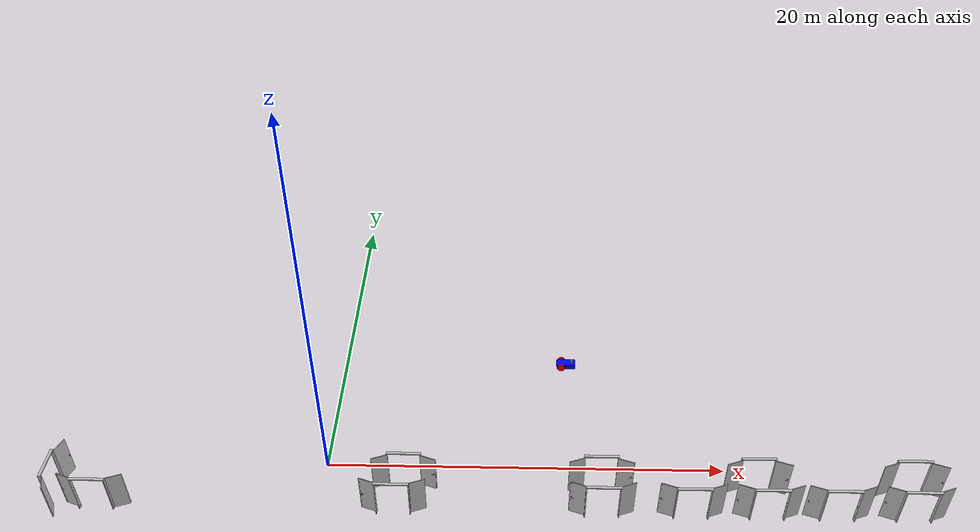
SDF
<sdf version="1.6">
 <world name="default">
  <gravity>0 0 -9.8</gravity>
  <physics default="0" name="default_physics" type="ode">
   <max_step_size>0.001</max_step_size>
   <real_time_factor>1</real_time_factor>
   <real_time_update_rate>1000</real_time_update_rate>
  </physics>
  <plugin filename="gz-sim-physics-system" name="gz::sim::systems::Physics"/>
  <plugin filename="gz-sim-user-commands-system" name="gz::sim::systems::UserCommands"/>
  <plugin filename="gz-sim-scene-broadcaster-system" name="gz::sim::systems::SceneBroadcaster"/>
  <plugin filename="gz-sim-imu-system" name="gz::sim::systems::Imu"/>
  <plugin filename="gz-sim-sensors-system" name="gz::sim::systems::Sensors">
   <render_engine>ogre2</render_engine>
  </plugin>
  <model name="vehicle_blue" canonical_link="chassis">
   <pose relative_to="world">12 7 0.5 0 0 0</pose>
   <frame name="lidar_frame" attached_to="chassis"><pose>0.4 0 0.25 0 0 0</pose></frame>
   <link name="chassis">
    <pose relative_to="__model__">0.25 0 0.2 0 0 0</pose>
    <inertial>
     <mass>0.5</mass>
     <inertia>
      <ixx>0.010417</ixx>
      <ixy>0</ixy>
      <ixz>0</ixz>
      <iyy>0.041667</iyy>
      <iyz>0</iyz>
      <izz>0.052083</izz>
     </inertia>
    </inertial>
    <visual name="visual">
     <geometry><box><size>1.0 0.5 0.25</size></box></geometry>
     <material>
      <ambient>0.0 0.0 1.0 1</ambient>
      <diffuse>0.0 0.0 1.0 1</diffuse>
      <specular>0.0 0.0 1.0 1</specular>
     </material>
    </visual>
    <collision name="collision"><geometry><box><size>1.0 0.5 0.25</size></box></geometry></collision>
    <sensor name="imu_sensor" type="imu">
     <always_on>1</always_on>
     <update_rate>1</update_rate>
     <visualize>true</visualize>
     <topic>imu</topic>
    </sensor>
    <sensor name="gpu_lidar" type="gpu_lidar">
     <pose relative_to="lidar_frame">0 0 0 0 0 0</pose>
     <topic>lidar</topic>
     <update_rate>10</update_rate>
     <lidar>
      <scan>
       <horizontal>
        <samples>640</samples>
        <resolution>1</resolution>
        <min_angle>-1.396263</min_angle>
        <max_angle>1.396263</max_angle>
       </horizontal>
       <vertical>
        <samples>1</samples>
        <resolution>1</resolution>
        <min_angle>0.0</min_angle>
        <max_angle>0.0</max_angle>
       </vertical>
      </scan>
      <range><min>0.08</min><max>10.0</max><resolution>0.01</resolution></range>
     </lidar>
    </sensor>
    <sensor name="camera1" type="camera">
     <pose relative_to="lidar_frame">0 0 0 0 0 0</pose>
     <always_on>1</always_on>
     <update_rate>30.0</update_rate>
     <topic>camera</topic>
     <camera name="camera_front">
      <horizontal_fov>1.4137</horizontal_fov>
      <lens>
       <intrinsics><fx>1108.952913</fx><fy>1110.658360</fy><cx>729.53</cx><cy>544.98</cy><s>1</s></intrinsics>
      </lens>
      <distortion><k1>0.0</k1><k2>0.0</k2><k3>0.0</k3><p1>0.0</p1><p2>0.0</p2><center>0.5 0.5</center></distortion>
      <image><width>1440</width><height>1080</height><format>R8G8B8</format></image>
      <noise><type>gaussian</type><mean>0</mean><stddev>0.007</stddev></noise>
     </camera>
    </sensor>
   </link>
   <frame name="box_frame" attached_to="chassis"><pose>0.3 0 0.2 0 0 0</pose></frame>
   <link name="cube">
    <pose relative_to="box_frame"/>
    <inertial>
     <mass>0.1</mass>
     <inertia><ixx>0.000166667</ixx><iyy>0.000166667</iyy><izz>0.000166667</izz></inertia>
    </inertial>
    <collision name="collision"><geometry><box><size>0.1 0.1 0.1</size></box></geometry></collision>
    <visual name="visual">
     <geometry><box><size>0.15 0.15 0.15</size></box></geometry>
     <material>
      <ambient>0.5 0.5 0.5 1</ambient>
      <diffuse>0.5 0.5 0.5 1</diffuse>
      <specular>0.5 0.5 0.5 1</specular>
     </material>
    </visual>
   </link>
   <link name="left_wheel">
    <pose relative_to="chassis">-0.25 0.3 0 -1.5707 0 0</pose>
    <inertial>
     <mass>1</mass>
     <inertia>
      <ixx>0.03645825</ixx>
      <ixy>0</ixy>
      <ixz>0</ixz>
      <iyy>0.03645825</iyy>
      <iyz>0</iyz>
      <izz>0.03125</izz>
     </inertia>
    </inertial>
    <visual name="visual">
     <geometry><cylinder><radius>0.2</radius><length>0.1</length></cylinder></geometry>
     <material>
      <ambient>1.0 0.0 0.0 1</ambient>
      <diffuse>1.0 0.0 0.0 1</diffuse>
      <specular>1.0 0.0 0.0 1</specular>
     </material>
    </visual>
    <collision name="collision">
     <geometry><cylinder><radius>0.2</radius><length>0.1</length></cylinder></geometry>
    </collision>
   </link>
   <link name="right_wheel">
    <pose relative_to="chassis">-0.25 -0.3 0 -1.5707 0 0</pose>
    <inertial>
     <mass>0.5</mass>
     <inertia>
      <ixx>0.03645825</ixx>
      <ixy>0</ixy>
      <ixz>0</ixz>
      <iyy>0.03645825</iyy>
      <iyz>0</iyz>
      <izz>0.03125</izz>
     </inertia>
    </inertial>
    <visual name="visual">
     <geometry><cylinder><radius>0.2</radius><length>0.1</length></cylinder></geometry>
     <material>
      <ambient>1.0 0.0 0.0 1</ambient>
      <diffuse>1.0 0.0 0.0 1</diffuse>
      <specular>1.0 0.0 0.0 1</specular>
     </material>
    </visual>
    <collision name="collision">
     <geometry><cylinder><radius>0.2</radius><length>0.1</length></cylinder></geometry>
    </collision>
   </link>
   <frame name="caster_frame" attached_to="chassis"><pose>0.4 0 -0.1 0 0 0</pose></frame>
   <link name="caster">
    <pose relative_to="caster_frame"/>
    <inertial>
     <mass>0.5</mass>
     <inertia><ixx>0.0125</ixx><ixy>0</ixy><ixz>0</ixz><iyy>0.0125</iyy><iyz>0</iyz><izz>0.0125</izz></inertia>
    </inertial>
    <visual name="visual">
     <geometry><sphere><radius>0.1</radius></sphere></geometry>
     <material>
      <ambient>0.0 1 0.0 1</ambient>
      <diffuse>0.0 1 0.0 1</diffuse>
      <specular>0.0 1 0.0 1</specular>
     </material>
    </visual>
    <collision name="collision"><geometry><sphere><radius>0.1</radius></sphere></geometry></collision>
   </link>
   <joint name="cube_joint" type="fixed"><parent>chassis</parent><child>cube</child></joint>
   <joint name="left_wheel_joint" type="revolute">
    <pose relative_to="left_wheel"/>
    <parent>chassis</parent>
    <child>left_wheel</child>
    <axis>
     <xyz expressed_in="__model__">0 1 0</xyz>
     <limit><lower>-1.79769e+308</lower><upper>1.79769e+308</upper></limit>
    </axis>
   </joint>
   <joint name="right_wheel_joint" type="revolute">
    <pose relative_to="right_wheel"/>
    <parent>chassis</parent>
    <child>right_wheel</child>
    <axis>
     <xyz expressed_in="__model__">0 1 0</xyz>
     <limit><lower>-1.79769e+308</lower><upper>1.79769e+308</upper></limit>
    </axis>
   </joint>
   <joint name="caster_wheel" type="ball"><parent>chassis</parent><child>caster</child></joint>
   <plugin filename="gz-sim-diff-drive-system" name="gz::sim::systems::DiffDrive">
    <left_joint>left_wheel_joint</left_joint>
    <right_joint>right_wheel_joint</right_joint>
    <wheel_separation>0.6</wheel_separation>
    <wheel_radius>0.2</wheel_radius>
    <odom_publish_frequency>1</odom_publish_frequency>
    <topic>cmd_vel</topic>
   </plugin>
  </model>
  <plugin filename="gz-sim-triggered-publisher-system" name="gz::sim::systems::TriggeredPublisher">
   <input type="gz.msgs.Int32" topic="/keyboard/keypress"><match field="data">16777234</match></input>
   <output type="gz.msgs.Twist" topic="/cmd_vel">linear: {x: 0.0}, angular: {z: 0.5}</output>
  </plugin>
  <plugin filename="gz-sim-triggered-publisher-system" name="gz::sim::systems::TriggeredPublisher">
   <input type="gz.msgs.Int32" topic="/keyboard/keypress"><match field="data">16777235</match></input>
   <output type="gz.msgs.Twist" topic="/cmd_vel">linear: {x: 0.5}, angular: {z: 0.0}</output>
  </plugin>
  <plugin filename="gz-sim-triggered-publisher-system" name="gz::sim::systems::TriggeredPublisher">
   <input type="gz.msgs.Int32" topic="/keyboard/keypress"><match field="data">16777236</match></input>
   <output type="gz.msgs.Twist" topic="/cmd_vel">linear: {x: 0.0}, angular: {z: -0.5}</output>
  </plugin>
  <plugin filename="gz-sim-triggered-publisher-system" name="gz::sim::systems::TriggeredPublisher">
   <input type="gz.msgs.Int32" topic="/keyboard/keypress"><match field="data">16777237</match></input>
   <output type="gz.msgs.Twist" topic="/cmd_vel">linear: {x: -0.5}, angular: {z: 0.0}</output>
  </plugin>
  <plugin filename="gz-sim-triggered-publisher-system" name="gz::sim::systems::TriggeredPublisher">
   <input type="gz.msgs.Int32" topic="/keyboard/keypress"><match field="data">16777249</match></input>
   <output type="gz.msgs.Twist" topic="/cmd_vel">linear: {x: 0}, angular: {z: 0}</output>
  </plugin>
  <plugin filename="gz-sim-triggered-publisher-system" name="gz::sim::systems::TriggeredPublisher">
   <input type="gz.msgs.Boolean" topic="/storage_90/touched"><match>data: true</match></input>
   <output type="gz.msgs.Twist" topic="/cmd_vel">linear: {x: 0.0}, angular: {z: 0.0}</output>
  </plugin>
  <plugin filename="gz-sim-triggered-publisher-system" name="gz::sim::systems::TriggeredPublisher">
   <input type="gz.msgs.Boolean" topic="/office_chair/touched"><match>data: true</match></input>
   <output type="gz.msgs.Twist" topic="/cmd_vel">linear: {x: 0.0}, angular: {z: 0.0}</output>
  </plugin>
  <model name="door_160_fully_open_12">
   <include><uri>model://models/door_160_fully_open</uri></include>
   <pose>4.058 -1.04 0 0 0 3.14159</pose>
  </model>
  <model name="door_160_fully_open_01">
   <include><uri>model://models/door_160_fully_open</uri></include>
   <pose>13.673 -1.04 0 0 0 3.14159</pose>
  </model>
  <model name="door_160_fully_open_02">
   <include><uri>model://models/door_160_fully_open</uri></include>
   <pose>21.273 -1.04 0 0 0 3.14159</pose>
  </model>
  <model name="door_160_fully_open_03">
   <include><uri>model://models/door_160_fully_open</uri></include>
   <pose>28.770 -1.04 0 0 0 3.14159</pose>
  </model>
  <model name="door_160_fully_open_04">
   <include><uri>model://models/door_160_fully_open</uri></include>
   <pose>28.620 -2.975 0 0 0 0</pose>
  </model>
  <model name="door_160_fully_open_05">
   <include><uri>model://models/door_160_fully_open</uri></include>
   <pose>24.96 -2.975 0 0 0 0</pose>
  </model>
  <model name="door_160_fully_open_06">
   <include><uri>model://models/door_160_fully_open</uri></include>
   <pose>21.601 -2.975 0 0 0 0</pose>
  </model>
  <model name="door_160_fully_open_07">
   <include><uri>model://models/door_160_fully_open</uri></include>
   <pose>17.955 -2.975 0 0 0 0</pose>
  </model>
  <model name="door_160_fully_open_08">
   <include><uri>model://models/door_160_fully_open</uri></include>
   <pose>13.673 -2.975 0 0 0 0</pose>
  </model>
  <model name="door_160_fully_open_09">
   <include><uri>model://models/door_160_fully_open</uri></include>
   <pose>3.63 -2.975 0 0 0 0</pose>
  </model>
  <model name="door_160_fully_open_10">
   <include><uri>model://models/door_160_fully_open</uri></include>
   <pose>-10.807 -2.975 0 0 0 0</pose>
  </model>
  <model name="door_160_fully_open_11">
   <include><uri>model://models/door_160_fully_open</uri></include>
   <pose>-13.095 -2.0065 0 0 0 -1.5708</pose>
  </model>
  <light name="ceiling_light_01" type="point">
   <pose>11 7 3.21824 0 0 0</pose>
   <diffuse>1 1 1 1</diffuse>
   <specular>1 1 1 1</specular>
   <intensity>0.2</intensity>
   <attenuation>
    <range>10</range>
    <constant>0.3</constant>
    <linear>0.01</linear>
    <quadratic>0.001</quadratic>
   </attenuation>
   <direction>0.1 0.1 -1</direction>
  </light>
  <light name="ceiling_light_02" type="point">
   <pose>14 7 3.21824 0 0 0</pose>
   <diffuse>1 1 1 1</diffuse>
   <specular>1 1 1 1</specular>
   <intensity>0.2</intensity>
   <attenuation>
    <range>10</range>
    <constant>0.3</constant>
    <linear>0.01</linear>
    <quadratic>0.001</quadratic>
   </attenuation>
   <direction>0.1 0.1 -1</direction>
  </light>
  <light name="ceiling_light_03" type="point">
   <pose>11 2 3.21824 0 0 0</pose>
   <diffuse>1 1 1 1</diffuse>
   <specular>1 1 1 1</specular>
   <intensity>0.2</intensity>
   <attenuation>
    <range>10</range>
    <constant>0.3</constant>
    <linear>0.01</linear>
    <quadratic>0.001</quadratic>
   </attenuation>
   <direction>0.1 0.1 -1</direction>
  </light>
  <light name="ceiling_light_04" type="point">
   <pose>14 2 3.21824 0 0 0</pose>
   <diffuse>1 1 1 1</diffuse>
   <specular>1 1 1 1</specular>
   <intensity>0.2</intensity>
   <attenuation>
    <range>10</range>
    <constant>0.3</constant>
    <linear>0.01</linear>
    <quadratic>0.001</quadratic>
   </attenuation>
   <direction>0.1 0.1 -1</direction>
  </light>
  <light name="ceiling_light_05" type="point">
   <pose>12.5 -6.2 3.21824 0 0 0</pose>
   <diffuse>1 1 1 1</diffuse>
   <specular>1 1 1 1</specular>
   <intensity>0.6</intensity>
   <attenuation>
    <range>6</range>
    <constant>0.3</constant>
    <linear>0.01</linear>
    <quadratic>0.001</quadratic>
   </attenuation>
   <direction>0.1 0.1 -1</direction>
  </light>
  <light name="ceiling_light_07" type="point">
   <pose>3.2 -4.3 3.21824 0 0 0</pose>
   <diffuse>1 1 1 1</diffuse>
   <specular>1 1 1 1</specular>
   <intensity>0.2</intensity>
   <attenuation>
    <range>9</range>
    <constant>0.3</constant>
    <linear>0.01</linear>
    <quadratic>0.001</quadratic>
   </attenuation>
   <direction>0.1 0.1 -1</direction>
  </light>
  <light name="ceiling_light_08" type="point">
   <pose>3.2 -8.3 3.21824 0 0 0</pose>
   <diffuse>1 1 1 1</diffuse>
   <specular>1 1 1 1</specular>
   <intensity>0.2</intensity>
   <attenuation>
    <range>9</range>
    <constant>0.3</constant>
    <linear>0.01</linear>
    <quadratic>0.001</quadratic>
   </attenuation>
   <direction>0.1 0.1 -1</direction>
  </light>
  <light name="ceiling_light_09" type="point">
   <pose>7.2 -4.3 3.21824 0 0 0</pose>
   <diffuse>1 1 1 1</diffuse>
   <specular>1 1 1 1</specular>
   <intensity>0.2</intensity>
   <attenuation>
    <range>9</range>
    <constant>0.3</constant>
    <linear>0.01</linear>
    <quadratic>0.001</quadratic>
   </attenuation>
   <direction>0.1 0.1 -1</direction>
  </light>
  <light name="ceiling_light_10" type="point">
   <pose>7.2 -8.3 3.21824 0 0 0</pose>
   <diffuse>1 1 1 1</diffuse>
   <specular>1 1 1 1</specular>
   <intensity>0.2</intensity>
   <attenuation>
    <range>9</range>
    <constant>0.3</constant>
    <linear>0.01</linear>
    <quadratic>0.001</quadratic>
   </attenuation>
   <direction>0.1 0.1 -1</direction>
  </light>
  <light name="ceiling_light_11" type="point">
   <pose>-1.5 -6.3 3.21824 0 0 0</pose>
   <diffuse>1 1 1 1</diffuse>
   <specular>1 1 1 1</specular>
   <intensity>0.4</intensity>
   <attenuation>
    <range>10</range>
    <constant>0.3</constant>
    <linear>0.01</linear>
    <quadratic>0.001</quadratic>
   </attenuation>
   <direction>0.1 0.1 -1</direction>
  </light>
  <light name="ceiling_light_12" type="point">
   <pose>-6 -6.3 3.21824 0 0 0</pose>
   <diffuse>1 1 1 1</diffuse>
   <specular>1 1 1 1</specular>
   <intensity>0.4</intensity>
   <attenuation>
    <range>10</range>
    <constant>0.3</constant>
    <linear>0.01</linear>
    <quadratic>0.001</quadratic>
   </attenuation>
   <direction>0.1 0.1 -1</direction>
  </light>
  <light name="ceiling_light_13" type="point">
   <pose>-12.5 -6.3 3.21824 0 0 0</pose>
   <diffuse>1 1 1 1</diffuse>
   <specular>1 1 1 1</specular>
   <intensity>0.4</intensity>
   <attenuation>
    <range>10</range>
    <constant>0.3</constant>
    <linear>0.01</linear>
    <quadratic>0.001</quadratic>
   </attenuation>
   <direction>0.1 0.1 -1</direction>
  </light>
  <light name="ceiling_light_14" type="point">
   <pose>-17 -6.3 3.21824 0 0 0</pose>
   <diffuse>1 1 1 1</diffuse>
   <specular>1 1 1 1</specular>
   <intensity>0.4</intensity>
   <attenuation>
    <range>10</range>
    <constant>0.3</constant>
    <linear>0.01</linear>
    <quadratic>0.001</quadratic>
   </attenuation>
   <direction>0.1 0.1 -1</direction>
  </light>
  <light name="ceiling_light_15" type="point">
   <pose>-10.1 -8.8 3.21824 0 0 0</pose>
   <diffuse>1 1 1 1</diffuse>
   <specular>1 1 1 1</specular>
   <intensity>0.5</intensity>
   <attenuation>
    <range>5</range>
    <constant>0.3</constant>
    <linear>0.01</linear>
    <quadratic>0.001</quadratic>
   </attenuation>
   <direction>0.1 0.1 -1</direction>
  </light>
  <light name="ceiling_light_16" type="point">
   <pose>-17 -2 3.21824 0 0 0</pose>
   <diffuse>1 1 1 1</diffuse>
   <specular>1 1 1 1</specular>
   <intensity>0.5</intensity>
   <attenuation>
    <range>5</range>
    <constant>0.3</constant>
    <linear>0.01</linear>
    <quadratic>0.001</quadratic>
   </attenuation>
   <direction>0.1 0.1 -1</direction>
  </light>
  <light name="ceiling_light_17" type="point">
   <pose>-16 2 3.21824 0 0 0</pose>
   <diffuse>1 1 1 1</diffuse>
   <specular>1 1 1 1</specular>
   <intensity>0.4</intensity>
   <attenuation>
    <range>10</range>
    <constant>0.3</constant>
    <linear>0.01</linear>
    <quadratic>0.001</quadratic>
   </attenuation>
   <direction>0.1 0.1 -1</direction>
  </light>
  <light name="ceiling_light_18" type="point">
   <pose>-16 7 3.21824 0 0 0</pose>
   <diffuse>1 1 1 1</diffuse>
   <specular>1 1 1 1</specular>
   <intensity>0.4</intensity>
   <attenuation>
    <range>10</range>
    <constant>0.3</constant>
    <linear>0.01</linear>
    <quadratic>0.001</quadratic>
   </attenuation>
   <direction>0.1 0.1 -1</direction>
  </light>
  <light name="ceiling_light_19" type="point">
   <pose>-10 2 3.21824 0 0 0</pose>
   <diffuse>1 1 1 1</diffuse>
   <specular>1 1 1 1</specular>
   <intensity>0.4</intensity>
   <attenuation>
    <range>5</range>
    <constant>0.3</constant>
    <linear>0.01</linear>
    <quadratic>0.001</quadratic>
   </attenuation>
   <direction>0.1 0.1 -1</direction>
  </light>
  <light name="ceiling_light_20" type="point">
   <pose>-11 0 3.21824 0 0 0</pose>
   <diffuse>1 1 1 1</diffuse>
   <specular>1 1 1 1</specular>
   <intensity>0.4</intensity>
   <attenuation>
    <range>5</range>
    <constant>0.3</constant>
    <linear>0.01</linear>
    <quadratic>0.001</quadratic>
   </attenuation>
   <direction>0.1 0.1 -1</direction>
  </light>
  <light name="ceiling_light_21" type="point">
   <pose>-5 2.8 3.21824 0 0 0</pose>
   <diffuse>1 1 1 1</diffuse>
   <specular>1 1 1 1</specular>
   <intensity>0.4</intensity>
   <attenuation>
    <range>5</range>
    <constant>0.3</constant>
    <linear>0.01</linear>
    <quadratic>0.001</quadratic>
   </attenuation>
   <direction>0.1 0.1 -1</direction>
  </light>
  <light name="ceiling_light_22" type="point">
   <pose>-5 1.5 3.21824 0 0 0</pose>
   <diffuse>1 1 1 1</diffuse>
   <specular>1 1 1 1</specular>
   <intensity>0.4</intensity>
   <attenuation>
    <range>5</range>
    <constant>0.3</constant>
    <linear>0.01</linear>
    <quadratic>0.001</quadratic>
   </attenuation>
   <direction>0.1 0.1 -1</direction>
  </light>
  <light name="ceiling_light_23" type="point">
   <pose>-4.3 0 3.21824 0 0 0</pose>
   <diffuse>1 1 1 1</diffuse>
   <specular>1 1 1 1</specular>
   <intensity>0.4</intensity>
   <attenuation>
    <range>5</range>
    <constant>0.3</constant>
    <linear>0.01</linear>
    <quadratic>0.001</quadratic>
   </attenuation>
   <direction>0.1 0.1 -1</direction>
  </light>
  <light name="ceiling_light_24" type="point">
   <pose>-5.3 0 3.21824 0 0 0</pose>
   <diffuse>1 1 1 1</diffuse>
   <specular>1 1 1 1</specular>
   <intensity>0.4</intensity>
   <attenuation>
    <range>5</range>
    <constant>0.3</constant>
    <linear>0.01</linear>
    <quadratic>0.001</quadratic>
   </attenuation>
   <direction>0.1 0.1 -1</direction>
  </light>
  <light name="ceiling_light_25" type="point">
   <pose>-7.8 1.4 3.21824 0 0 0</pose>
   <diffuse>1 1 1 1</diffuse>
   <specular>1 1 1 1</specular>
   <intensity>0.7</intensity>
   <attenuation>
    <range>5.5</range>
    <constant>0.3</constant>
    <linear>0.01</linear>
    <quadratic>0.001</quadratic>
   </attenuation>
   <direction>0.1 0.1 -1</direction>
  </light>
  <light name="ceiling_light_26" type="point">
   <pose>-11 -2 3.21824 0 0 0</pose>
   <diffuse>1 1 1 1</diffuse>
   <specular>1 1 1 1</specular>
   <intensity>0.7</intensity>
   <attenuation>
    <range>4.1</range>
    <constant>0.3</constant>
    <linear>0.01</linear>
    <quadratic>0.001</quadratic>
   </attenuation>
   <direction>0.1 0.1 -1</direction>
  </light>
  <light name="ceiling_light_27" type="point">
   <pose>-2 -2 3.21824 0 0 0</pose>
   <diffuse>1 1 1 1</diffuse>
   <specular>1 1 1 1</specular>
   <intensity>0.7</intensity>
   <attenuation>
    <range>5.7</range>
    <constant>0.3</constant>
    <linear>0.01</linear>
    <quadratic>0.001</quadratic>
   </attenuation>
   <direction>0.1 0.1 -1</direction>
  </light>
  <light name="ceiling_light_28" type="point">
   <pose>8.6 -2 3.21824 0 0 0</pose>
   <diffuse>1 1 1 1</diffuse>
   <specular>1 1 1 1</specular>
   <intensity>0.7</intensity>
   <attenuation>
    <range>8</range>
    <constant>0.3</constant>
    <linear>0.01</linear>
    <quadratic>0.001</quadratic>
   </attenuation>
   <direction>0.1 0.1 -1</direction>
  </light>
  <light name="ceiling_light_29" type="point">
   <pose>20 -2 3.21824 0 0 0</pose>
   <diffuse>1 1 1 1</diffuse>
   <specular>1 1 1 1</specular>
   <intensity>0.7</intensity>
   <attenuation>
    <range>11</range>
    <constant>0.3</constant>
    <linear>0.01</linear>
    <quadratic>0.001</quadratic>
   </attenuation>
   <direction>0.1 0.1 -1</direction>
  </light>
  <light name="ceiling_light_30" type="point">
   <pose>25 -2 3.21824 0 0 0</pose>
   <diffuse>1 1 1 1</diffuse>
   <specular>1 1 1 1</specular>
   <intensity>0.7</intensity>
   <attenuation>
    <range>10</range>
    <constant>0.3</constant>
    <linear>0.01</linear>
    <quadratic>0.001</quadratic>
   </attenuation>
   <direction>0.1 0.1 -1</direction>
  </light>
  <light name="ceiling_light_31" type="point">
   <pose>-1 5 3.21824 0 0 0</pose>
   <diffuse>1 1 1 1</diffuse>
   <specular>1 1 1 1</specular>
   <intensity>0.7</intensity>
   <attenuation>
    <range>10</range>
    <constant>0.3</constant>
    <linear>0.01</linear>
    <quadratic>0.001</quadratic>
   </attenuation>
   <direction>0.1 0.1 -1</direction>
  </light>
  <light name="ceiling_light_32" type="point">
   <pose>-0.5 9.2 3.21824 0 0 0</pose>
   <diffuse>1 1 1 1</diffuse>
   <specular>1 1 1 1</specular>
   <intensity>0.4</intensity>
   <attenuation>
    <range>10</range>
    <constant>0.3</constant>
    <linear>0.01</linear>
    <quadratic>0.001</quadratic>
   </attenuation>
   <direction>0.1 0.1 -1</direction>
  </light>
  <light name="ceiling_light_33" type="point">
   <pose>5 5 3.21824 0 0 0</pose>
   <diffuse>1 1 1 1</diffuse>
   <specular>1 1 1 1</specular>
   <intensity>0.7</intensity>
   <attenuation>
    <range>10</range>
    <constant>0.3</constant>
    <linear>0.01</linear>
    <quadratic>0.001</quadratic>
   </attenuation>
   <direction>0.1 0.1 -1</direction>
  </light>
  <light name="ceiling_light_34" type="point">
   <pose>20 5 3.21824 0 0 0</pose>
   <diffuse>1 1 1 1</diffuse>
   <specular>1 1 1 1</specular>
   <intensity>0.7</intensity>
   <attenuation>
    <range>10</range>
    <constant>0.3</constant>
    <linear>0.01</linear>
    <quadratic>0.001</quadratic>
   </attenuation>
   <direction>0.1 0.1 -1</direction>
  </light>
  <light name="ceiling_light_35" type="point">
   <pose>18 0 3.21824 0 0 0</pose>
   <diffuse>1 1 1 1</diffuse>
   <specular>1 1 1 1</specular>
   <intensity>0.4</intensity>
   <attenuation>
    <range>10</range>
    <constant>0.3</constant>
    <linear>0.01</linear>
    <quadratic>0.001</quadratic>
   </attenuation>
   <direction>0.1 0.1 -1</direction>
  </light>
  <light name="ceiling_light_36" type="point">
   <pose>27 5 3.21824 0 0 0</pose>
   <diffuse>1 1 1 1</diffuse>
   <specular>1 1 1 1</specular>
   <intensity>0.7</intensity>
   <attenuation>
    <range>10</range>
    <constant>0.3</constant>
    <linear>0.01</linear>
    <quadratic>0.001</quadratic>
   </attenuation>
   <direction>0.1 0.1 -1</direction>
  </light>
  <light name="ceiling_light_37" type="point">
   <pose>25 0 3.21824 0 0 0</pose>
   <diffuse>1 1 1 1</diffuse>
   <specular>1 1 1 1</specular>
   <intensity>0.4</intensity>
   <attenuation>
    <range>10</range>
    <constant>0.3</constant>
    <linear>0.01</linear>
    <quadratic>0.001</quadratic>
   </attenuation>
   <direction>0.1 0.1 -1</direction>
  </light>
  <light name="ceiling_light_38" type="point">
   <pose>28.5 -6 3.21824 0 0 0</pose>
   <diffuse>1 1 1 1</diffuse>
   <specular>1 1 1 1</specular>
   <intensity>0.6</intensity>
   <attenuation>
    <range>10</range>
    <constant>0.3</constant>
    <linear>0.01</linear>
    <quadratic>0.001</quadratic>
   </attenuation>
   <direction>0.1 0.1 -1</direction>
  </light>
  <light name="ceiling_light_39" type="point">
   <pose>25 -6 3.21824 0 0 0</pose>
   <diffuse>1 1 1 1</diffuse>
   <specular>1 1 1 1</specular>
   <intensity>0.6</intensity>
   <attenuation>
    <range>10</range>
    <constant>0.3</constant>
    <linear>0.01</linear>
    <quadratic>0.001</quadratic>
   </attenuation>
   <direction>0.1 0.1 -1</direction>
  </light>
  <light name="ceiling_light_40" type="point">
   <pose>21.5 -6 3.21824 0 0 0</pose>
   <diffuse>1 1 1 1</diffuse>
   <specular>1 1 1 1</specular>
   <intensity>0.6</intensity>
   <attenuation>
    <range>10</range>
    <constant>0.3</constant>
    <linear>0.01</linear>
    <quadratic>0.001</quadratic>
   </attenuation>
   <direction>0.1 0.1 -1</direction>
  </light>
  <light name="ceiling_light_41" type="point">
   <pose>18 -6 3.21824 0 0 0</pose>
   <diffuse>1 1 1 1</diffuse>
   <specular>1 1 1 1</specular>
   <intensity>0.6</intensity>
   <attenuation>
    <range>10</range>
    <constant>0.3</constant>
    <linear>0.01</linear>
    <quadratic>0.001</quadratic>
   </attenuation>
   <direction>0.1 0.1 -1</direction>
  </light>
  <light name="ceiling_light_42" type="point">
   <pose>-7.6 8 3.21824 0 0 0</pose>
   <diffuse>1 1 1 1</diffuse>
   <specular>1 1 1 1</specular>
   <intensity>0.6</intensity>
   <attenuation>
    <range>10</range>
    <constant>0.3</constant>
    <linear>0.01</linear>
    <quadratic>0.001</quadratic>
   </attenuation>
   <direction>0.1 0.1 -1</direction>
  </light>
  <light name="ceiling_light_43" type="point">
   <pose>-11 8 3.21824 0 0 0</pose>
   <diffuse>1 1 1 1</diffuse>
   <specular>1 1 1 1</specular>
   <intensity>0.6</intensity>
   <attenuation>
    <range>10</range>
    <constant>0.3</constant>
    <linear>0.01</linear>
    <quadratic>0.001</quadratic>
   </attenuation>
   <direction>0.1 0.1 -1</direction>
  </light>
  <light name="ceiling_light_44" type="point">
   <pose>-4.7 4.6 3.21824 0 0 0</pose>
   <diffuse>1 1 1 1</diffuse>
   <specular>1 1 1 1</specular>
   <intensity>0.4</intensity>
   <attenuation>
    <range>10</range>
    <constant>0.3</constant>
    <linear>0.01</linear>
    <quadratic>0.001</quadratic>
   </attenuation>
   <direction>0.1 0.1 -1</direction>
  </light>
 </world>
</sdf>

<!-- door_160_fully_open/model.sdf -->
<sdf version="1.6">
  <model name='door_160_fully_open'>
    <static>true</static>
    <link name="body">

        <visual name="visual">
          <geometry>
            <mesh><uri>model://models/door_160_fully_open/meshes/door_160_fully_open.dae</uri></mesh>
          </geometry>
        </visual>

        <collision name="collision">
          <geometry>
            <mesh><uri>model://models/door_160_fully_open/meshes/door_160_fully_open.dae</uri></mesh>
          </geometry>
        </collision>

    </link>
  </model>
</sdf>
